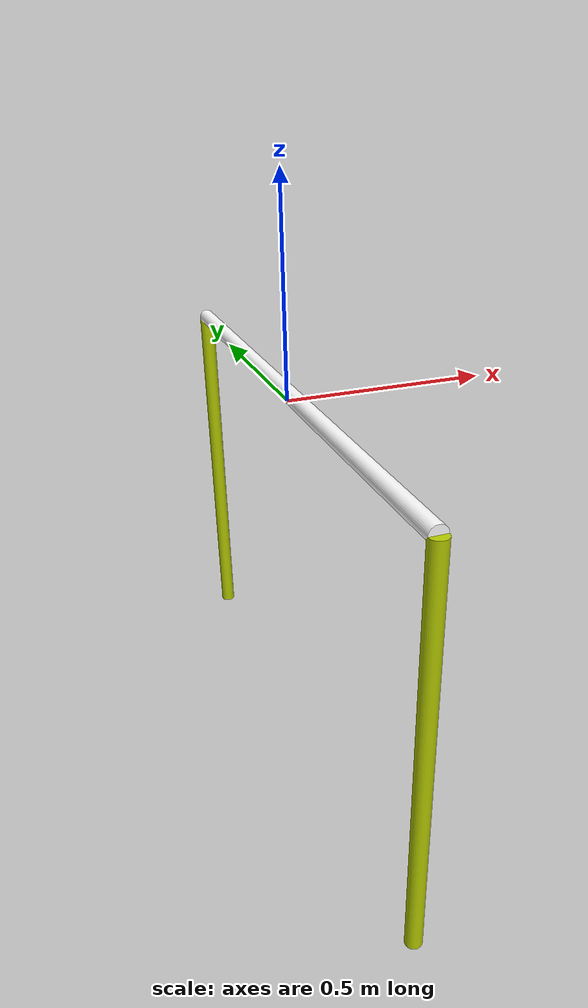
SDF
<?xml version="1.0" ?>
<sdf version="1.11">
  <model name="sauvc_qualification_gate">
    <static>true</static>
    <link name="link">
      <collision name="qualification_gate_collision">
        <pose>0 0 0 0 0 0</pose>
        <geometry>
          <mesh>
            <scale>1 1 1</scale>
            <uri>model://sauvc_qualification_gate/qualification_gate.dae</uri>
          </mesh>
        </geometry>
      </collision>

      <visual name="qualification_gate">
        <cast_shadows>false</cast_shadows>
        <pose>0 0 0 0 0 0</pose>
        <geometry>
          <mesh>
            <scale>1 1 1</scale>
            <uri>model://sauvc_qualification_gate/qualification_gate.dae</uri>
          </mesh>
        </geometry>
      </visual>
    </link>
  </model>
</sdf>
